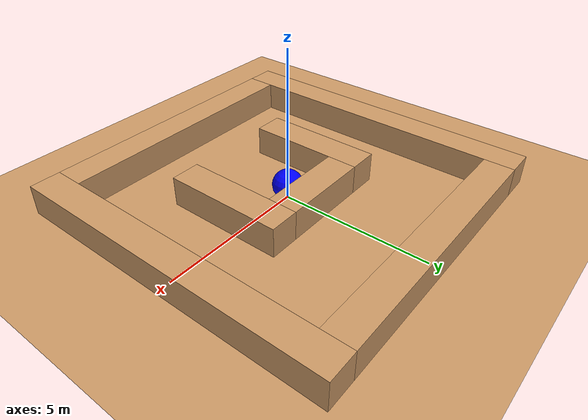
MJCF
<mujoco model='pointmass_u_wall_big'>
    <compiler inertiafromgeom='true' coordinate='local' angle='radian' settotalmass='14' />
    <default>
        <geom contype='1' conaffinity='0' condim='3' friction='.4 .4 .4' rgba='0.8 0.6 .4 1' solimp='0.0 0.8 0.01' solref='0.02 1' />
    </default>
    <size nstack='300000' nuser_geom='1' />
    <option timestep='0.01' gravity='0 0 -9.81' />
    <asset>

        <texture name="texplane" type="2d" builtin="checker" rgb1="0.55 0.67 0.80" rgb2="1 1 1" width="100" height="100" />
        <material name='MatPlane' texture="texplane" shininess="0" texrepeat="8 8" specular="0.6" reflectance="0" />

        <texture name="wood" file="../texture/wood.png" type="cube"/>
        <material shininess=".1" name="wood" texture="wood" specular="0.4"/>

        <texture name="darkwood" file="../texture/darkwood.png" type="cube"/>
        <material shininess=".1" name="darkwood" texture="darkwood" specular="0.4"/>

    </asset>
    <worldbody>
        <light directional="true"/>

        <geom name='floor' material="MatPlane" pos='0 0 0' size='10 10 10' type='plane' conaffinity='1' condim='3' />

        <geom name='left_wall' pos='-5.0 0 0.5' size='0.5 5.5 0.5' type='box' conaffinity='1' material="wood" condim='1' contype='1' />
        <geom name='right_wall' pos='5.0 0 0.5' size='0.5 5.5 0.5' type='box' conaffinity='1' material="wood" condim='1' contype='1' />
        <geom name='front_wall' pos='0 5.0 0.5' size='4.5 0.5 0.5' type='box' conaffinity='1' material="wood" condim='1' contype='1' />
        <geom name='back_wall' pos='0 -5.0 0.5' size='4.5 0.5 0.5' type='box' conaffinity='1' material="wood" condim='1' contype='1' />

        <geom name='uwall_bottom' pos='0 1 0.5' size='1.5 0.5 0.5' type='box' conaffinity='1' material="wood" condim='1' contype='1' />
        <geom name='uwall_right' pos='2.0 -0.5 0.5' size='0.5 2.0 0.5' type='box' conaffinity='1' material="wood" condim='1' contype='1' />
        <geom name='uwall_left' pos='-2.0 -0.5 0.5' size='0.5 2.0 0.5' type='box' conaffinity='1' material="wood" condim='1' contype='1' />

        <body name='pointmass' pos='0 0 0'>
            <geom name='pointmass' type='sphere' pos ='0 0 0.5' rgba="0 0 1 1" size='0.5' />

            <joint name="xmove" type="slide"  pos="0 0 0" axis="1 0 0"/>
            <joint name="ymove" type="slide"  pos="0 0 0" axis="0 1 0"/>
        </body>
    </worldbody>

    <actuator>
        <velocity ctrllimited="true" ctrlrange="-10000 10000" joint="xmove" kv="1000"  user="1"/>
        <velocity ctrllimited="true" ctrlrange="-10000 10000" joint="ymove" kv="1000"  user="1"/>
    </actuator>

</mujoco>
